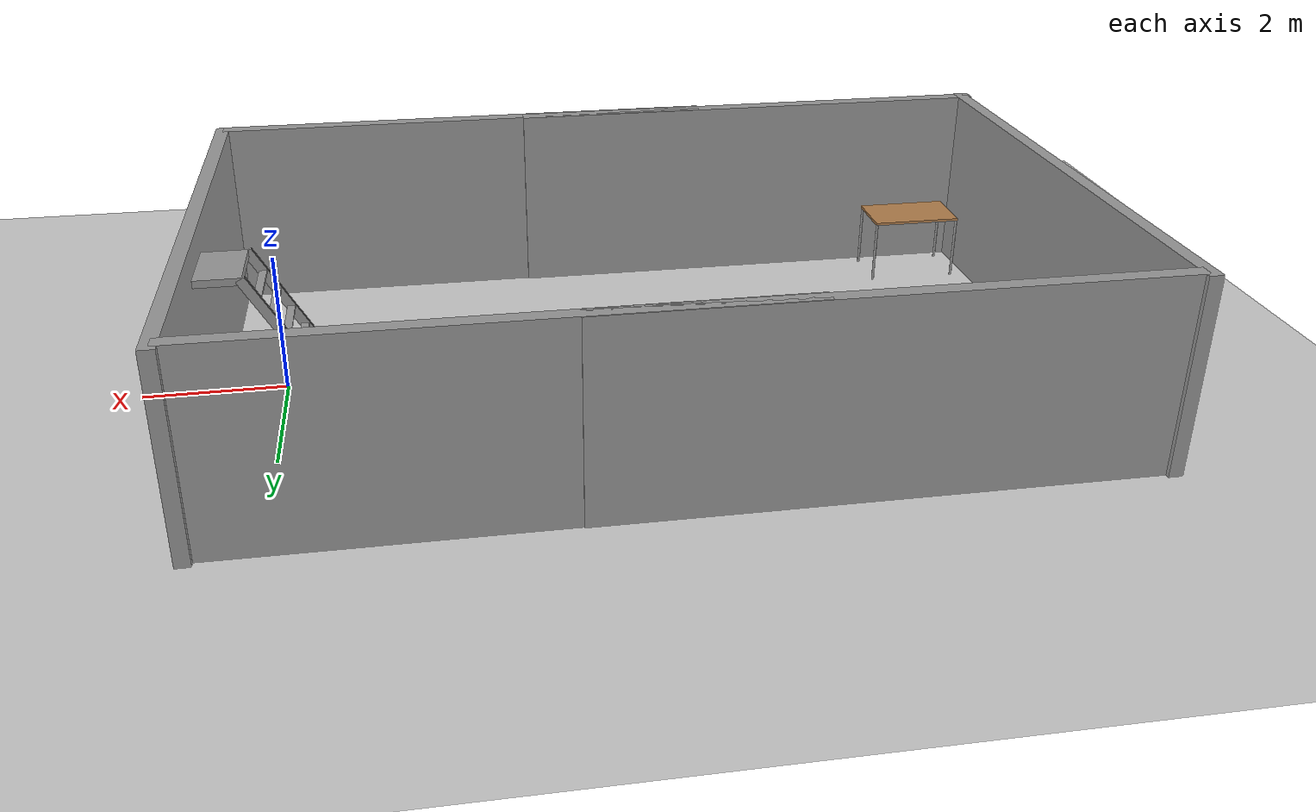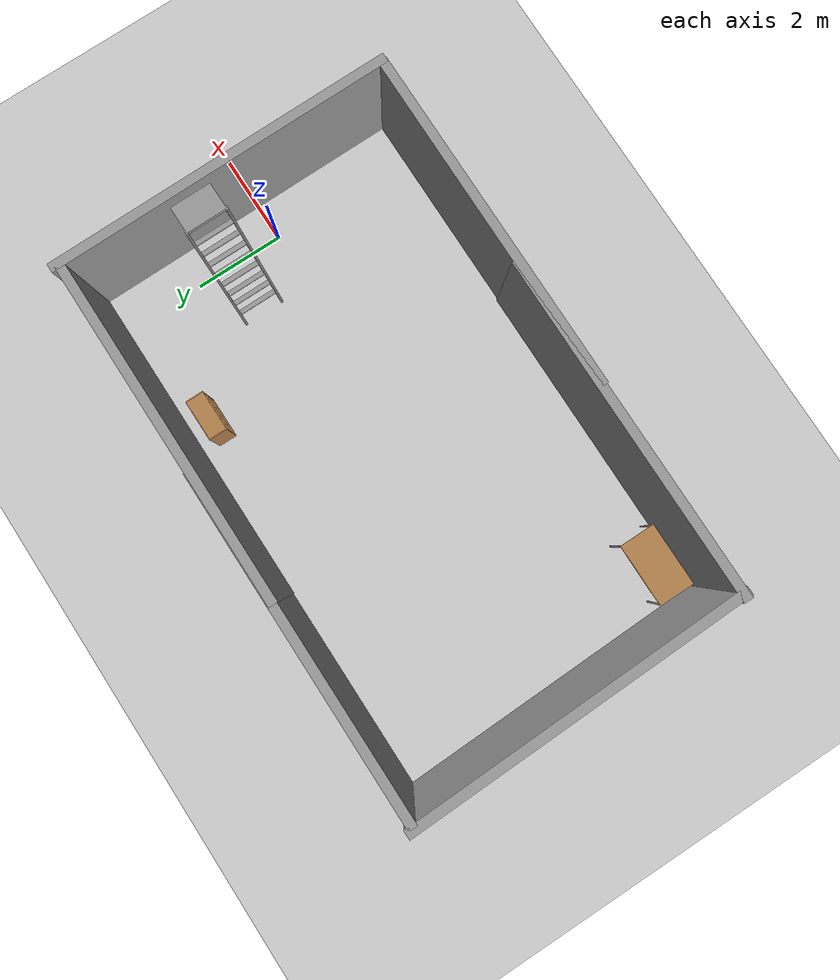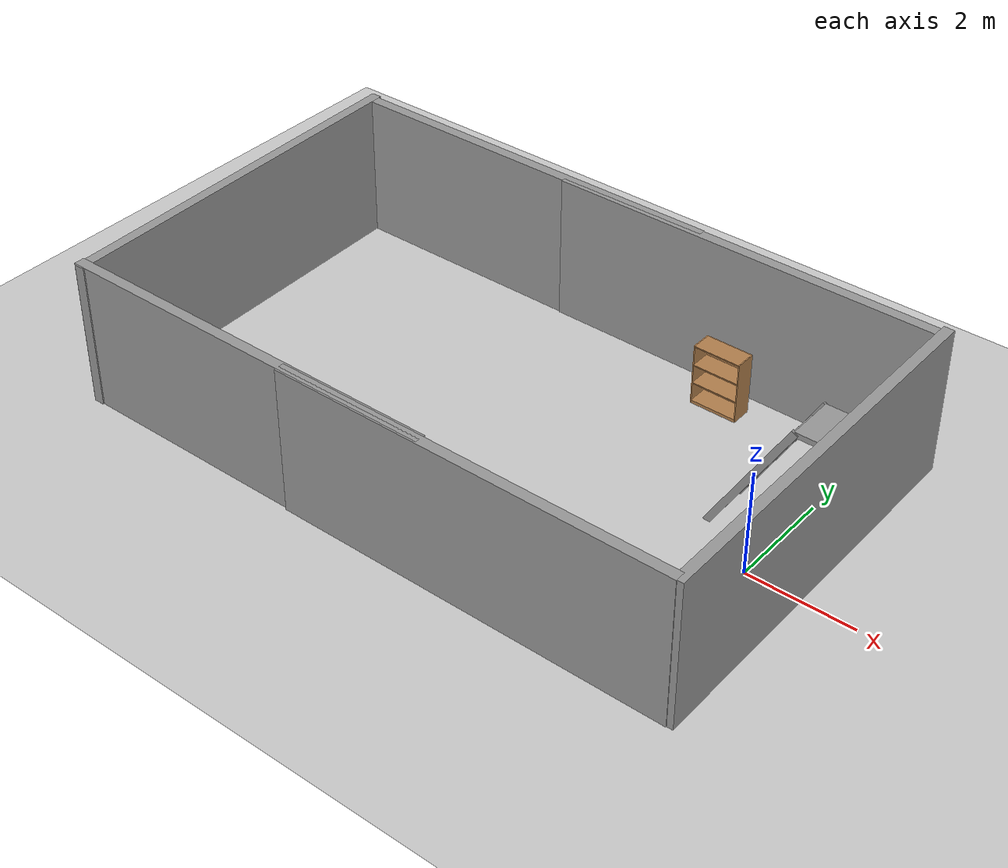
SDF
<sdf version="1.6">
 <world name="default">
  <light name="sun" type="directional">
   <pose>0 0 10 0 -0 0</pose>
   <diffuse>0.8 0.8 0.8 1</diffuse>
   <specular>0.1 0.1 0.1 1</specular>
   <attenuation>
    <range>1000</range>
    <constant>0.9</constant>
    <linear>0.01</linear>
    <quadratic>0.001</quadratic>
   </attenuation>
   <direction>-0.5 0.5 -1</direction>
  </light>
  <model name="ground_plane">
   <static>1</static>
   <link name="link">
    <collision name="collision">
     <geometry><plane><normal>0 0 1</normal><size>100 100</size></plane></geometry>
     <surface><friction><ode><mu>100</mu><mu2>50</mu2></ode></friction></surface>
    </collision>
    <visual name="visual">
     <cast_shadows>0</cast_shadows>
     <geometry><plane><normal>0 0 1</normal><size>100 100</size></plane></geometry>
     <material>
      <script><uri>file://media/materials/scripts/gazebo.material</uri><name>Gazebo/Grey</name></script>
     </material>
    </visual>
   </link>
  </model>
  <gravity>0 0 -9.8</gravity>
  <magnetic_field>6e-06 2.3e-05 -4.2e-05</magnetic_field>
  <atmosphere type="adiabatic"/>
  <physics name="default_physics" default="0" type="ode">
   <max_step_size>0.001</max_step_size>
   <real_time_factor>1</real_time_factor>
   <real_time_update_rate>1000</real_time_update_rate>
  </physics>
  <scene><ambient>0.4 0.4 0.4 1</ambient><background>0.7 0.7 0.7 1</background><shadows>1</shadows></scene>
  <spherical_coordinates>
   <surface_model>EARTH_WGS84</surface_model>
   <latitude_deg>0</latitude_deg>
   <longitude_deg>0</longitude_deg>
   <elevation>0</elevation>
   <heading_deg>0</heading_deg>
  </spherical_coordinates>
  <model name="grey_wall">
   <static>1</static>
   <link name="link">
    <pose>0 0 1.4 0 -0 0</pose>
    <collision name="collision"><geometry><box><size>7.5 0.2 2.8</size></box></geometry></collision>
    <visual name="visual">
     <cast_shadows>0</cast_shadows>
     <geometry><box><size>7.5 0.2 2.8</size></box></geometry>
     <material>
      <script>
       <uri>model://grey_wall/materials/scripts</uri>
       <uri>model://grey_wall/materials/textures</uri>
       <name>vrc/grey_wall</name>
      </script>
     </material>
    </visual>
   </link>
   <pose>-2.81485 -3.31618 0 0 -0 0</pose>
  </model>
  <model name="grey_wall_0">
   <static>1</static>
   <link name="link">
    <pose>0 0 1.4 0 -0 0</pose>
    <collision name="collision"><geometry><box><size>7.5 0.2 2.8</size></box></geometry></collision>
    <visual name="visual">
     <cast_shadows>0</cast_shadows>
     <geometry><box><size>7.5 0.2 2.8</size></box></geometry>
     <material>
      <script>
       <uri>model://grey_wall/materials/scripts</uri>
       <uri>model://grey_wall/materials/textures</uri>
       <name>vrc/grey_wall</name>
      </script>
     </material>
    </visual>
   </link>
   <pose>-2.86446 3.91332 0 0 -0 0</pose>
  </model>
  <model name="grey_wall_1">
   <static>1</static>
   <link name="link">
    <pose>0 0 1.4 0 -0 0</pose>
    <collision name="collision"><geometry><box><size>7.5 0.2 2.8</size></box></geometry></collision>
    <visual name="visual">
     <cast_shadows>0</cast_shadows>
     <geometry><box><size>7.5 0.2 2.8</size></box></geometry>
     <material>
      <script>
       <uri>model://grey_wall/materials/scripts</uri>
       <uri>model://grey_wall/materials/textures</uri>
       <name>vrc/grey_wall</name>
      </script>
     </material>
    </visual>
   </link>
   <pose>0.920702 0.34788 0 0 0 -1.56324</pose>
  </model>
  <model name="grey_wall_2">
   <static>1</static>
   <link name="link">
    <pose>0 0 1.4 0 -0 0</pose>
    <collision name="collision"><geometry><box><size>7.5 0.2 2.8</size></box></geometry></collision>
    <visual name="visual">
     <cast_shadows>0</cast_shadows>
     <geometry><box><size>7.5 0.2 2.8</size></box></geometry>
     <material>
      <script>
       <uri>model://grey_wall/materials/scripts</uri>
       <uri>model://grey_wall/materials/textures</uri>
       <name>vrc/grey_wall</name>
      </script>
     </material>
    </visual>
   </link>
   <pose>-7.46213 -3.28248 0 0 -0 0</pose>
  </model>
  <model name="grey_wall_3">
   <static>1</static>
   <link name="link">
    <pose>0 0 1.4 0 -0 0</pose>
    <collision name="collision"><geometry><box><size>7.5 0.2 2.8</size></box></geometry></collision>
    <visual name="visual">
     <cast_shadows>0</cast_shadows>
     <geometry><box><size>7.5 0.2 2.8</size></box></geometry>
     <material>
      <script>
       <uri>model://grey_wall/materials/scripts</uri>
       <uri>model://grey_wall/materials/textures</uri>
       <name>vrc/grey_wall</name>
      </script>
     </material>
    </visual>
   </link>
   <pose>-7.47626 3.93165 0 0 -0 0</pose>
  </model>
  <model name="grey_wall_4">
   <static>1</static>
   <link name="link">
    <pose>0 0 1.4 0 -0 0</pose>
    <collision name="collision"><geometry><box><size>7.5 0.2 2.8</size></box></geometry></collision>
    <visual name="visual">
     <cast_shadows>0</cast_shadows>
     <geometry><box><size>7.5 0.2 2.8</size></box></geometry>
     <material>
      <script>
       <uri>model://grey_wall/materials/scripts</uri>
       <uri>model://grey_wall/materials/textures</uri>
       <name>vrc/grey_wall</name>
      </script>
     </material>
    </visual>
   </link>
   <pose>-11.1659 0.340993 0 0 0 -1.5459</pose>
  </model>
  <model name="bookshelf">
   <static>1</static>
   <link name="link">
    <inertial><mass>1</mass></inertial>
    <collision name="back">
     <pose>0 0.005 0.6 0 -0 0</pose>
     <geometry><box><size>0.9 0.01 1.2</size></box></geometry>
    </collision>
    <visual name="visual1">
     <pose>0 0.005 0.6 0 -0 0</pose>
     <geometry><box><size>0.9 0.01 1.2</size></box></geometry>
     <material>
      <script><uri>file://media/materials/scripts/gazebo.material</uri><name>Gazebo/Wood</name></script>
     </material>
    </visual>
    <collision name="left_side">
     <pose>0.45 -0.195 0.6 0 -0 0</pose>
     <geometry><box><size>0.02 0.4 1.2</size></box></geometry>
    </collision>
    <visual name="visual2">
     <pose>0.45 -0.195 0.6 0 -0 0</pose>
     <geometry><box><size>0.02 0.4 1.2</size></box></geometry>
     <material>
      <script><uri>file://media/materials/scripts/gazebo.material</uri><name>Gazebo/Wood</name></script>
     </material>
    </visual>
    <collision name="right_side">
     <pose>-0.45 -0.195 0.6 0 -0 0</pose>
     <geometry><box><size>0.02 0.4 1.2</size></box></geometry>
    </collision>
    <visual name="visual3">
     <pose>-0.45 -0.195 0.6 0 -0 0</pose>
     <geometry><box><size>0.02 0.4 1.2</size></box></geometry>
     <material>
      <script><uri>file://media/materials/scripts/gazebo.material</uri><name>Gazebo/Wood</name></script>
     </material>
    </visual>
    <collision name="bottom">
     <pose>0 -0.195 0.03 0 -0 0</pose>
     <geometry><box><size>0.88 0.4 0.06</size></box></geometry>
    </collision>
    <visual name="visual4">
     <pose>0 -0.195 0.03 0 -0 0</pose>
     <geometry><box><size>0.88 0.4 0.06</size></box></geometry>
     <material>
      <script><uri>file://media/materials/scripts/gazebo.material</uri><name>Gazebo/Wood</name></script>
     </material>
    </visual>
    <collision name="top">
     <pose>0 -0.195 1.19 0 -0 0</pose>
     <geometry><box><size>0.88 0.4 0.02</size></box></geometry>
    </collision>
    <visual name="visual5">
     <pose>0 -0.195 1.19 0 -0 0</pose>
     <geometry><box><size>0.88 0.4 0.02</size></box></geometry>
     <material>
      <script><uri>file://media/materials/scripts/gazebo.material</uri><name>Gazebo/Wood</name></script>
     </material>
    </visual>
    <collision name="low_shelf">
     <pose>0 -0.195 0.43 0 -0 0</pose>
     <geometry><box><size>0.88 0.4 0.02</size></box></geometry>
    </collision>
    <visual name="visual6">
     <pose>0 -0.195 0.43 0 -0 0</pose>
     <geometry><box><size>0.88 0.4 0.02</size></box></geometry>
     <material>
      <script><uri>file://media/materials/scripts/gazebo.material</uri><name>Gazebo/Wood</name></script>
     </material>
    </visual>
    <collision name="high_shelf">
     <pose>0 -0.195 0.8 0 -0 0</pose>
     <geometry><box><size>0.88 0.4 0.02</size></box></geometry>
    </collision>
    <visual name="visual7">
     <pose>0 -0.195 0.8 0 -0 0</pose>
     <geometry><box><size>0.88 0.4 0.02</size></box></geometry>
     <material>
      <script><uri>file://media/materials/scripts/gazebo.material</uri><name>Gazebo/Wood</name></script>
     </material>
    </visual>
   </link>
   <pose>-2.69693 3.45982 0 0 -0 0</pose>
  </model>
  <model name="table">
   <static>0</static>
   <link name="link">
    <collision name="surface">
     <pose>0 0 1 0 -0 0</pose>
     <geometry><box><size>1.5 0.8 0.03</size></box></geometry>
     <surface><friction><ode><mu>0.6</mu><mu2>0.6</mu2></ode></friction></surface>
    </collision>
    <visual name="visual1">
     <pose>0 0 1 0 -0 0</pose>
     <geometry><box><size>1.4 0.8 0.04</size></box></geometry>
     <material>
      <script><uri>file://media/materials/scripts/gazebo.material</uri><name>Gazebo/Wood</name></script>
     </material>
    </visual>
    <collision name="front_left_leg">
     <pose>0.68 0.38 0.5 0 -0 0</pose>
     <geometry><cylinder><radius>0.02</radius><length>1</length></cylinder></geometry>
    </collision>
    <visual name="front_left_leg">
     <pose>0.68 0.38 0.5 0 -0 0</pose>
     <geometry><cylinder><radius>0.02</radius><length>1</length></cylinder></geometry>
     <material>
      <script><uri>file://media/materials/scripts/gazebo.material</uri><name>Gazebo/Grey</name></script>
     </material>
    </visual>
    <collision name="front_right_leg">
     <pose>0.68 -0.38 0.5 0 -0 0</pose>
     <geometry><cylinder><radius>0.02</radius><length>1</length></cylinder></geometry>
    </collision>
    <visual name="front_right_leg">
     <pose>0.68 -0.38 0.5 0 -0 0</pose>
     <geometry><cylinder><radius>0.02</radius><length>1</length></cylinder></geometry>
     <material>
      <script><uri>file://media/materials/scripts/gazebo.material</uri><name>Gazebo/Grey</name></script>
     </material>
    </visual>
    <collision name="back_right_leg">
     <pose>-0.68 -0.38 0.5 0 -0 0</pose>
     <geometry><cylinder><radius>0.02</radius><length>1</length></cylinder></geometry>
    </collision>
    <visual name="back_right_leg">
     <pose>-0.68 -0.38 0.5 0 -0 0</pose>
     <geometry><cylinder><radius>0.02</radius><length>1</length></cylinder></geometry>
     <material>
      <script><uri>file://media/materials/scripts/gazebo.material</uri><name>Gazebo/Grey</name></script>
     </material>
    </visual>
    <collision name="back_left_leg">
     <pose>-0.68 0.38 0.5 0 -0 0</pose>
     <geometry><cylinder><radius>0.02</radius><length>1</length></cylinder></geometry>
    </collision>
    <visual name="back_left_leg">
     <pose>-0.68 0.38 0.5 0 -0 0</pose>
     <geometry><cylinder><radius>0.02</radius><length>1</length></cylinder></geometry>
     <material>
      <script><uri>file://media/materials/scripts/gazebo.material</uri><name>Gazebo/Grey</name></script>
     </material>
    </visual>
    <inertial>
     <inertia><ixx>1</ixx><ixy>0</ixy><ixz>0</ixz><iyy>1</iyy><iyz>0</iyz><izz>1</izz></inertia>
     <mass>1</mass>
    </inertial>
   </link>
   <pose>-10.0861 -2.63693 -9e-06 0 -1e-06 0</pose>
  </model>
  <model name="ladder_60deg_0rails">
   <static>1</static>
   <link name="step0">
    <pose>0 0.15396 0.266667 0 -0 0</pose>
    <inertial>
     <mass>9.75482</mass>
     <inertia>
      <ixx>0.00957124</ixx>
      <iyy>0.65963</iyy>
      <izz>0.666842</izz>
      <ixy>0</ixy>
      <ixz>0</ixz>
      <iyz>0</iyz>
     </inertia>
    </inertial>
    <collision name="collision"><geometry><box><size>0.9 0.1016 0.0381</size></box></geometry></collision>
    <visual name="visual">
     <geometry><box><size>0.9 0.1016 0.0381</size></box></geometry>
     <material>
      <script><uri>file://media/materials/scripts/gazebo.material</uri><name>Gazebo/Grey</name></script>
     </material>
    </visual>
   </link>
   <link name="step1">
    <pose>0 0.30792 0.533333 0 -0 0</pose>
    <inertial>
     <mass>9.75482</mass>
     <inertia>
      <ixx>0.00957124</ixx>
      <iyy>0.65963</iyy>
      <izz>0.666842</izz>
      <ixy>0</ixy>
      <ixz>0</ixz>
      <iyz>0</iyz>
     </inertia>
    </inertial>
    <collision name="collision"><geometry><box><size>0.9 0.1016 0.0381</size></box></geometry></collision>
    <visual name="visual">
     <geometry><box><size>0.9 0.1016 0.0381</size></box></geometry>
     <material>
      <script><uri>file://media/materials/scripts/gazebo.material</uri><name>Gazebo/Grey</name></script>
     </material>
    </visual>
   </link>
   <link name="step2">
    <pose>0 0.46188 0.8 0 -0 0</pose>
    <inertial>
     <mass>9.75482</mass>
     <inertia>
      <ixx>0.00957124</ixx>
      <iyy>0.65963</iyy>
      <izz>0.666842</izz>
      <ixy>0</ixy>
      <ixz>0</ixz>
      <iyz>0</iyz>
     </inertia>
    </inertial>
    <collision name="collision"><geometry><box><size>0.9 0.1016 0.0381</size></box></geometry></collision>
    <visual name="visual">
     <geometry><box><size>0.9 0.1016 0.0381</size></box></geometry>
     <material>
      <script><uri>file://media/materials/scripts/gazebo.material</uri><name>Gazebo/Grey</name></script>
     </material>
    </visual>
   </link>
   <link name="step3">
    <pose>0 0.61584 1.06667 0 -0 0</pose>
    <inertial>
     <mass>9.75482</mass>
     <inertia>
      <ixx>0.00957124</ixx>
      <iyy>0.65963</iyy>
      <izz>0.666842</izz>
      <ixy>0</ixy>
      <ixz>0</ixz>
      <iyz>0</iyz>
     </inertia>
    </inertial>
    <collision name="collision"><geometry><box><size>0.9 0.1016 0.0381</size></box></geometry></collision>
    <visual name="visual">
     <geometry><box><size>0.9 0.1016 0.0381</size></box></geometry>
     <material>
      <script><uri>file://media/materials/scripts/gazebo.material</uri><name>Gazebo/Grey</name></script>
     </material>
    </visual>
   </link>
   <link name="step4">
    <pose>0 0.7698 1.33333 0 -0 0</pose>
    <inertial>
     <mass>9.75482</mass>
     <inertia>
      <ixx>0.00957124</ixx>
      <iyy>0.65963</iyy>
      <izz>0.666842</izz>
      <ixy>0</ixy>
      <ixz>0</ixz>
      <iyz>0</iyz>
     </inertia>
    </inertial>
    <collision name="collision"><geometry><box><size>0.9 0.1016 0.0381</size></box></geometry></collision>
    <visual name="visual">
     <geometry><box><size>0.9 0.1016 0.0381</size></box></geometry>
     <material>
      <script><uri>file://media/materials/scripts/gazebo.material</uri><name>Gazebo/Grey</name></script>
     </material>
    </visual>
   </link>
   <link name="step5">
    <pose>0 0.92376 1.6 0 -0 0</pose>
    <inertial>
     <mass>9.75482</mass>
     <inertia>
      <ixx>0.00957124</ixx>
      <iyy>0.65963</iyy>
      <izz>0.666842</izz>
      <ixy>0</ixy>
      <ixz>0</ixz>
      <iyz>0</iyz>
     </inertia>
    </inertial>
    <collision name="collision"><geometry><box><size>0.9 0.1016 0.0381</size></box></geometry></collision>
    <visual name="visual">
     <geometry><box><size>0.9 0.1016 0.0381</size></box></geometry>
     <material>
      <script><uri>file://media/materials/scripts/gazebo.material</uri><name>Gazebo/Grey</name></script>
     </material>
    </visual>
   </link>
   <link name="step6">
    <pose>0 1.07772 1.86667 0 -0 0</pose>
    <inertial>
     <mass>9.75482</mass>
     <inertia>
      <ixx>0.00957124</ixx>
      <iyy>0.65963</iyy>
      <izz>0.666842</izz>
      <ixy>0</ixy>
      <ixz>0</ixz>
      <iyz>0</iyz>
     </inertia>
    </inertial>
    <collision name="collision"><geometry><box><size>0.9 0.1016 0.0381</size></box></geometry></collision>
    <visual name="visual">
     <geometry><box><size>0.9 0.1016 0.0381</size></box></geometry>
     <material>
      <script><uri>file://media/materials/scripts/gazebo.material</uri><name>Gazebo/Grey</name></script>
     </material>
    </visual>
   </link>
   <link name="step7">
    <pose>0 1.23168 2.13333 0 -0 0</pose>
    <inertial>
     <mass>9.75482</mass>
     <inertia>
      <ixx>0.00957124</ixx>
      <iyy>0.65963</iyy>
      <izz>0.666842</izz>
      <ixy>0</ixy>
      <ixz>0</ixz>
      <iyz>0</iyz>
     </inertia>
    </inertial>
    <collision name="collision"><geometry><box><size>0.9 0.1016 0.0381</size></box></geometry></collision>
    <visual name="visual">
     <geometry><box><size>0.9 0.1016 0.0381</size></box></geometry>
     <material>
      <script><uri>file://media/materials/scripts/gazebo.material</uri><name>Gazebo/Grey</name></script>
     </material>
    </visual>
   </link>
   <link name="landing">
    <pose>0 1.68564 2.4 0 -0 0</pose>
    <inertial>
     <mass>57.6072</mass>
     <inertia><ixx>1.73518</ixx><iyy>3.89545</iyy><izz>5.6167</izz><ixy>0</ixy><ixz>0</ixz><iyz>0</iyz></inertia>
    </inertial>
    <collision name="collision"><geometry><box><size>0.9 0.6 0.1016</size></box></geometry></collision>
    <visual name="visual">
     <geometry><box><size>0.9 0.6 0.1016</size></box></geometry>
     <material>
      <script><uri>file://media/materials/scripts/gazebo.material</uri><name>Gazebo/Grey</name></script>
     </material>
    </visual>
   </link>
   <link name="left_side_wall">
    <pose>-0.45 0.69282 1.2 1.0472 -0 0</pose>
    <collision name="collision"><geometry><box><size>0.0508 2.85128 0.13</size></box></geometry></collision>
    <visual name="visual">
     <geometry><box><size>0.0508 2.85128 0.13</size></box></geometry>
     <material>
      <script><uri>file://media/materials/scripts/gazebo.material</uri><name>Gazebo/Grey</name></script>
     </material>
    </visual>
   </link>
   <link name="right_side_wall">
    <pose>0.45 0.69282 1.2 1.0472 -0 0</pose>
    <collision name="collision"><geometry><box><size>0.0508 2.85128 0.13</size></box></geometry></collision>
    <visual name="visual">
     <geometry><box><size>0.0508 2.85128 0.13</size></box></geometry>
     <material>
      <script><uri>file://media/materials/scripts/gazebo.material</uri><name>Gazebo/Grey</name></script>
     </material>
    </visual>
   </link>
   <pose>-1.17676 1.14879 0 0 0 -1.5678</pose>
  </model>
 </world>
</sdf>
